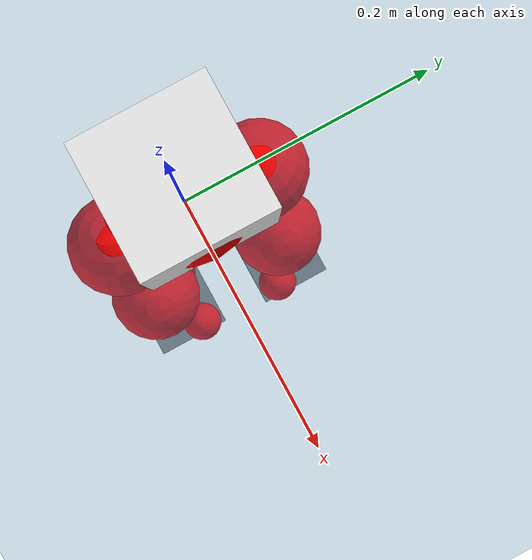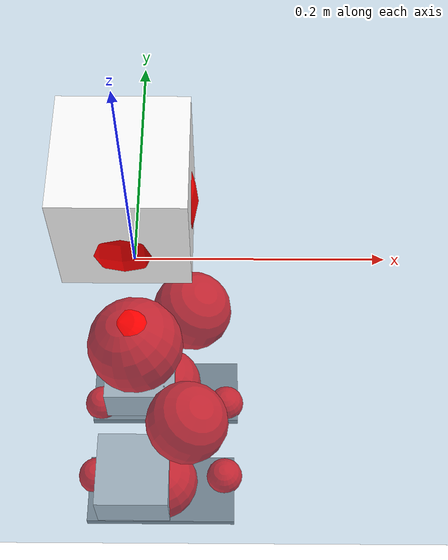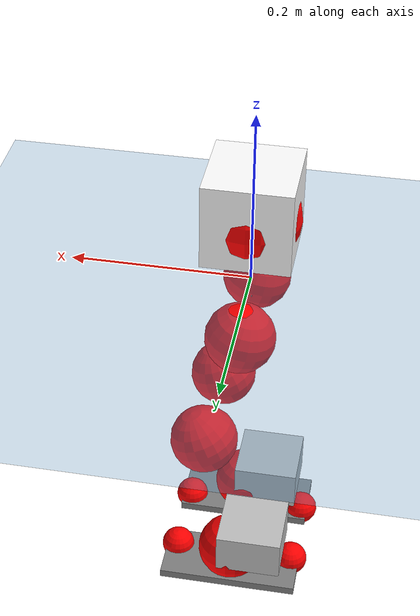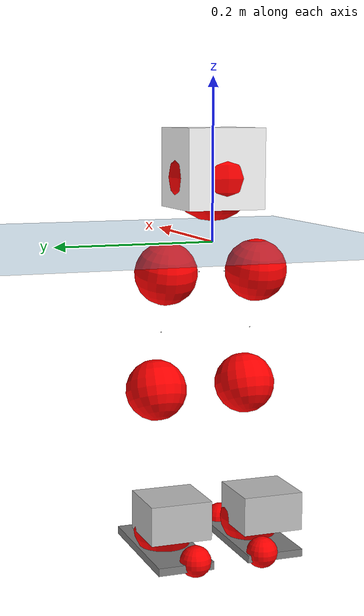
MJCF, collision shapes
<mujoco model="pi_12dof_release_v1">
  <compiler angle="radian" assetdir="assets" balanceinertia="true" inertiafromgeom="false"/>

  <option timestep="0.005" density="1.2" viscosity="2e-05"/>

  <size nkey="1"/>

  <visual>
    <quality shadowsize="8192"/>
    <map shadowclip="0.5"/>
  </visual>

  <default>
    <default class="/">
      <joint armature="0.01" damping="0.01" frictionloss="0.01"/>
      <geom contype="0" conaffinity="0" group="1" solref="-1000 -80"/>
      <site size="0.01 0.005 0.005" group="5"/>
      <general forcelimited="true" biastype="affine" gainprm="20" biasprm="0 -20 -0.5"/>
      <default class="foot">
        <geom size="0.0845 0.036 0.005" type="box" condim="6" group="4" priority="1" friction="0.9 0.2 0.2" solimp="0.015 1 0.005"/>
      </default>
      <default class="reward_collision_sphere">
        <geom group="5" rgba="1 0 0 1"/>
      </default>
    </default>
  </default>

  <asset>
    <texture type="skybox" colorspace="auto" name="//unnamed_texture_0" builtin="gradient" rgb1="0.95 0.95 0.95" rgb2="0.95 0.95 0.95" width="100" height="600"/>
    <texture type="2d" colorspace="auto" name="texplane" builtin="checker" rgb1="0.345 0.575 0.748" rgb2="0.345 0.575 0.748" markrgb="1 1 1" width="512" height="512"/>
    <material name="MatPlane" class="/" texture="texplane" texuniform="true" texrepeat="2 2" specular="0.9"/>
    <mesh name="baselink_1" class="/" file="baselink_1.STL"/>
    <mesh name="r_hip_pitch_link" class="/" file="r_hip_pitch_link.STL"/>
    <mesh name="r_hip_roll_link" class="/" file="r_hip_roll_link.STL"/>
    <mesh name="r_thigh_link" class="/" file="r_thigh_link.STL"/>
    <mesh name="r_calf_link" class="/" file="r_calf_link.STL"/>
    <mesh name="r_ankle_pitch_link" class="/" file="r_ankle_pitch_link.STL"/>
    <mesh name="r_ankle_roll_link" class="/" file="r_ankle_roll_link.STL"/>
    <mesh name="l_hip_pitch_link" class="/" file="l_hip_pitch_link.STL"/>
    <mesh name="l_hip_roll_link" class="/" file="l_hip_roll_link.STL"/>
    <mesh name="l_thigh_link" class="/" file="l_thigh_link.STL"/>
    <mesh name="l_calf_link" class="/" file="l_calf_link.STL"/>
    <mesh name="l_ankle_pitch_link" class="/" file="l_ankle_pitch_link.STL"/>
    <mesh name="l_ankle_roll_link" class="/" file="l_ankle_roll_link.STL"/>
  </asset>

  <worldbody>
    <geom name="floor" class="/" size="100 100 0.125" type="plane" group="0" material="MatPlane"/>
    <light name="toplight_shadow" class="/" pos="0 0 5" dir="0.0990148 0.0990148 -0.990148" type="directional" ambient="0.04 0.04 0.04" diffuse="0.55 0.55 0.55" specular="0.12 0.12 0.12"/>
    <light name="toplight_fill" class="/" pos="0 0 5" dir="0.0990148 0.0990148 -0.990148" type="directional" castshadow="false" ambient="0.04 0.04 0.04" diffuse="0.3 0.3 0.3" specular="0.08 0.08 0.08"/>
    <body name="trunk" pos="-6.27479e-05 0.00073114 0.000173393" quat="1 0.00033341 -0.000107011 7.3179e-05">
      <inertial pos="0.00331456 -0.00181461 0.0450213" quat="0.694701 0.012491 0.0131506 0.71907" mass="1.94417" diaginertia="0.0113971 0.00210239 0.00746725"/>
      <joint name="//unnamed_joint_0" type="free"/>
      <geom name="//unnamed_geom_1" class="/" type="mesh" density="0" rgba="1 1 1 1" mesh="baselink_1"/>
      <geom name="//unnamed_geom_2" class="/" size="0.0485486 0.0485486 0.0485486" pos="0 0 0.0901651" type="box" rgba="1 1 1 1"/>
      <geom name="//unnamed_geom_3" class="reward_collision_sphere" size="0.0534034" pos="0 0 0.0788944"/>
      <site name="imu" class="/" pos="-0.000767901 -0.00133056 -0.00134749" size="0.00970971"/>
      <camera name="track" class="/" pos="0 -1.49839 0" quat="0.707107 0.707107 0 0" mode="trackcom"/>
      <camera name="ego_camera" class="/" pos="0.0777491 0 0.202871" quat="-0.5 -0.5 0.5 0.5"/>
      <body name="r_hip_pitch_link" pos="0.000194694 -0.0165777 -0.036886" quat="0.9922 -9.77977e-06 -0.124657 -1.45422e-06">
        <inertial pos="0.000885348 -0.0424247 -4.43182e-05" quat="-0.0222205 0.700993 -0.030274 0.712179" mass="0.339792" diaginertia="0.000130997 2.3524e-05 0.000152493"/>
        <joint name="r_hip_pitch_joint" class="/" pos="0 0 0" axis="0.00624781 -0.999978 -0.00199929" range="-1.76465 1.23139" armature="0.0097843" damping="0.0169977" frictionloss="0.0100967"/>
        <geom name="//unnamed_geom_4" class="/" type="mesh" density="0" rgba="0.75294 0.75294 0.75294 1" mesh="r_hip_pitch_link"/>
        <geom name="//unnamed_geom_5" class="/" size="0.000485486 0.000485486 0.000485486" type="box" rgba="0.75294 0.75294 0.75294 1"/>
        <body name="r_hip_roll_link" pos="0.000257117 -0.0426018 -0.000608948" quat="1 0.000120018 0.000538158 -1.91182e-05">
          <inertial pos="-0.00072802 0.000982078 -0.0689085" quat="0.704401 -0.0814412 -0.0813521 0.700406" mass="0.352386" diaginertia="0.000399175 6.6721e-05 0.00023445"/>
          <joint name="r_hip_roll_joint" class="/" pos="0 0 0" axis="-0.999992 -0.00283532 0.00274195" range="-0.122498 0.496176" armature="0.0095744" damping="0.00778682" frictionloss="0.00964774"/>
          <geom name="//unnamed_geom_6" class="/" type="mesh" density="0" rgba="0.75294 0.75294 0.75294 1" mesh="r_hip_roll_link"/>
          <geom name="//unnamed_geom_7" class="/" size="0.000485486 0.000485486 0.000485486" type="box" rgba="0.75294 0.75294 0.75294 1"/>
          <geom name="//unnamed_geom_8" class="reward_collision_sphere" size="0.0388388"/>
          <body name="r_thigh_link" pos="-0.000179688 -0.0011687 -0.0776243" quat="1 0.000220274 6.87128e-05 0.000136165">
            <inertial pos="5.86264e-05 0.00120446 -0.0535134" quat="0.736967 0.675925 0.0022786 0.000168572" mass="0.103767" diaginertia="0.000151379 2.27836e-05 0.000106231"/>
            <joint name="r_thigh_joint" class="/" pos="0 0 0" axis="-0.000861793 0.000803265 -0.999999" range="-0.322914 0.571124" armature="0.00972143" damping="0" frictionloss="0.0101871"/>
            <geom name="//unnamed_geom_9" class="/" type="mesh" density="0" rgba="0.75294 0.75294 0.75294 1" mesh="r_thigh_link"/>
            <geom name="//unnamed_geom_10" class="/" size="0.000485486 0.000485486 0.000485486" type="box" rgba="0.75294 0.75294 0.75294 1"/>
            <body name="r_calf_link" pos="-0.00169147 -0.000809861 -0.0782917" quat="0.947698 -4.8292e-05 0.319168 -0.000116139">
              <inertial pos="-0.000903267 -0.00154961 -0.0781074" quat="0.999977 -0.00128779 0.000968034 0.00665345" mass="0.749863" diaginertia="0.00424421 0.000826491 0.000315631"/>
              <joint name="r_calf_joint" class="/" pos="0 0 0" axis="-0.00673316 -0.999959 -0.00603898" range="-1.63135 0.637369" armature="0.00975403" damping="0.0138893" frictionloss="0.0100181"/>
              <geom name="//unnamed_geom_11" class="/" type="mesh" density="0" rgba="0.75294 0.75294 0.75294 1" mesh="r_calf_link"/>
              <geom name="//unnamed_geom_12" class="/" size="0.000485486 0.000485486 0.000485486" type="box" rgba="0.75294 0.75294 0.75294 1"/>
              <geom name="//unnamed_geom_13" class="reward_collision_sphere" size="0.0388388"/>
              <body name="r_ankle_pitch_link" pos="0.0011899 0.000892968 -0.158795" quat="0.980054 -3.28393e-05 -0.19873 3.14774e-05">
                <inertial pos="0.00413231 0.00356512 0.000584276" quat="0.00284792 0.705591 -0.00186386 0.708611" mass="0.161174" diaginertia="0.000372207 5.23957e-05 0.000218093"/>
                <joint name="r_ankle_pitch_joint" class="/" pos="0 0 0" axis="-0.000585877 -1 6.94149e-05" stiffness="0.000367657" range="-1.28436 0.486141" armature="0.00976401" damping="0.0104165" frictionloss="0.00992663"/>
                <geom name="//unnamed_geom_14" class="/" type="mesh" density="0" rgba="0.75294 0.75294 0.75294 1" mesh="r_ankle_pitch_link"/>
                <geom name="//unnamed_geom_15" class="/" size="0.0378679 0.0388388 0.0242743" type="box" rgba="0.75294 0.75294 0.75294 1"/>
                <body name="r_ankle_roll_link" pos="0.0793191 0.00330735 0.000844562" quat="1 -0.000118934 6.10545e-05 -1.92311e-05">
                  <inertial pos="-0.0238809 -0.000721797 -0.0163513" quat="0.561207 0.431989 0.435126 0.555966" mass="0.482475" diaginertia="0.00138683 0.000245434 0.000529106"/>
                  <joint name="r_ankle_roll_joint" class="/" pos="0 0 0" axis="-0.999976 -0.00294157 -0.00628557" range="-0.124334 0.148803" armature="0.00971573" damping="0.00312776" frictionloss="0.00960963"/>
                  <geom name="//unnamed_geom_16" class="/" type="mesh" density="0" rgba="0.75294 0.75294 0.75294 1" mesh="r_ankle_roll_link"/>
                  <geom name="//unnamed_geom_17" class="/" type="mesh" rgba="0.75294 0.75294 0.75294 1" mesh="r_ankle_roll_link"/>
                  <geom name="right_foot" class="foot" size="0.0789198 0.036373 0.00472073" pos="-0.0528694 0 -0.0495908"/>
                  <geom name="//unnamed_geom_19" class="reward_collision_sphere" size="0.0388388" pos="-0.0518327 0 -0.0225413"/>
                  <geom name="//unnamed_geom_20" class="reward_collision_sphere" size="0.0194194" pos="0.0155498 0.0149839 -0.0450825"/>
                  <geom name="//unnamed_geom_21" class="reward_collision_sphere" size="0.0194194" pos="-0.124399 0.0149839 -0.0450825"/>
                  <site name="right_foot" class="foot" pos="-0.0528694 0 -0.0495908" size="0.00970971"/>
                </body>
              </body>
            </body>
          </body>
        </body>
      </body>
      <body name="l_hip_pitch_link" pos="0.000365069 0.0163735 -0.0365803" quat="0.992197 0.000177399 -0.124678 0.000160264">
        <inertial pos="0.00143677 0.0400774 -0.00111329" quat="-0.0389277 0.706122 0.0281456 0.706459" mass="0.353323" diaginertia="0.000153923 2.52911e-05 0.000182437"/>
        <joint name="l_hip_pitch_joint" class="/" pos="0 0 0" axis="-0.00117945 0.999999 0.000465554" range="-1.23877 1.75834" armature="0.00981262" damping="0.0118778" frictionloss="0.00960535"/>
        <geom name="//unnamed_geom_22" class="/" type="mesh" density="0" rgba="0.75294 0.75294 0.75294 1" mesh="l_hip_pitch_link"/>
        <geom name="//unnamed_geom_23" class="/" size="0.000485486 0.000485486 0.000485486" type="box" rgba="0.75294 0.75294 0.75294 1"/>
        <body name="l_hip_roll_link" pos="0.000368771 0.0431465 -0.000617399" quat="1 3.48089e-06 -0.00017648 0.000394881">
          <inertial pos="-0.000799938 0.0014036 -0.0689933" quat="0.699433 -0.0764696 -0.079035 0.706186" mass="0.350251" diaginertia="0.000403081 6.4666e-05 0.000234606"/>
          <joint name="l_hip_roll_joint" class="/" pos="0 0 0" axis="-0.999989 -0.000725163 -0.00461627" range="-0.497785 0.11267" armature="0.0102865" damping="0.00394107" frictionloss="0.010167"/>
          <geom name="//unnamed_geom_24" class="/" type="mesh" density="0" rgba="0.75294 0.75294 0.75294 1" mesh="l_hip_roll_link"/>
          <geom name="//unnamed_geom_25" class="/" size="0.000485486 0.000485486 0.000485486" type="box" rgba="0.75294 0.75294 0.75294 1"/>
          <geom name="//unnamed_geom_26" class="reward_collision_sphere" size="0.0388388"/>
          <body name="l_thigh_link" pos="0.000410764 -0.000775144 -0.0785407" quat="1 4.33215e-05 0.000224453 0.000374639">
            <inertial pos="0.000331009 -0.00154094 -0.0544156" quat="0.675974 0.736925 -7.67277e-05 -0.000589089" mass="0.104022" diaginertia="0.000151617 2.26205e-05 0.000106345"/>
            <joint name="l_thigh_joint" class="/" pos="0 0 0" axis="0.000438855 0.00036766 -1" range="-0.60492 0.301987" armature="0.0101917" damping="9.59595e-05" frictionloss="0.00956968"/>
            <geom name="//unnamed_geom_27" class="/" type="mesh" density="0" rgba="0.75294 0.75294 0.75294 1" mesh="l_thigh_link"/>
            <geom name="//unnamed_geom_28" class="/" size="0.000485486 0.000485486 0.000485486" type="box" rgba="0.75294 0.75294 0.75294 1"/>
            <body name="l_calf_link" pos="-0.00137962 0.000317328 -0.0794184" quat="0.947575 0.000357562 0.319533 0.000650903">
              <inertial pos="0.000520383 0.0027974 -0.078898" quat="0.999981 0.00267534 -0.000266461 0.00557847" mass="0.752555" diaginertia="0.00426066 0.000833926 0.000327266"/>
              <joint name="l_calf_joint" class="/" pos="0 0 0" axis="-0.000356384 0.999996 0.00296913" range="-0.646201 1.65848" armature="0.0101965" damping="0.00863487" frictionloss="0.00971206"/>
              <geom name="//unnamed_geom_29" class="/" type="mesh" density="0" rgba="0.75294 0.75294 0.75294 1" mesh="l_calf_link"/>
              <geom name="//unnamed_geom_30" class="/" size="0.000485486 0.000485486 0.000485486" type="box" rgba="0.75294 0.75294 0.75294 1"/>
              <geom name="//unnamed_geom_31" class="reward_collision_sphere" size="0.0388388"/>
              <body name="l_ankle_pitch_link" pos="0.00119906 0.000864031 -0.157133" quat="0.980081 -4.44246e-05 -0.198597 0.000308011">
                <inertial pos="0.00526042 -0.000337458 -0.000688487" quat="-0.00370266 0.708401 0.00288564 0.705795" mass="0.161499" diaginertia="0.000368768 5.26058e-05 0.000220907"/>
                <joint name="l_ankle_pitch_joint" class="/" pos="0 0 0" axis="3.84758e-05 1 0.000174276" stiffness="0.00180807" range="-0.518134 1.30499" armature="0.00948867" damping="0.00765817" frictionloss="0.0101267"/>
                <geom name="//unnamed_geom_32" class="/" type="mesh" density="0" rgba="0.75294 0.75294 0.75294 1" mesh="l_ankle_pitch_link"/>
                <geom name="//unnamed_geom_33" class="/" size="0.0378679 0.0388388 0.0242743" type="box" rgba="0.75294 0.75294 0.75294 1"/>
                <body name="l_ankle_roll_link" pos="0.0778289 0.000706991 -0.000794803" quat="1 -6.23407e-06 -1.04419e-05 1.15259e-05">
                  <inertial pos="-0.0242255 -0.000281787 -0.015827" quat="0.559868 0.430592 0.434351 0.558997" mass="0.470301" diaginertia="0.00135412 0.00024057 0.000514272"/>
                  <joint name="l_ankle_roll_joint" class="/" pos="0 0 0" axis="-0.999999 -0.000264837 -0.00127206" range="-0.131422 0.156295" armature="0.00945829" damping="0.00123186" frictionloss="0.00995767"/>
                  <geom name="//unnamed_geom_34" class="/" type="mesh" density="0" rgba="0.75294 0.75294 0.75294 1" mesh="l_ankle_roll_link"/>
                  <geom name="//unnamed_geom_35" class="/" type="mesh" rgba="0.75294 0.75294 0.75294 1" mesh="l_ankle_roll_link"/>
                  <geom name="left_foot" class="foot" size="0.0813061 0.0356068 0.00494162" pos="-0.0528694 0 -0.0495908"/>
                  <geom name="//unnamed_geom_37" class="reward_collision_sphere" size="0.0388388" pos="-0.0518327 0 -0.0225413"/>
                  <geom name="//unnamed_geom_38" class="reward_collision_sphere" size="0.0194194" pos="0.0155498 -0.0149839 -0.0450825"/>
                  <geom name="//unnamed_geom_39" class="reward_collision_sphere" size="0.0194194" pos="-0.124399 -0.0149839 -0.0450825"/>
                  <site name="left_foot" class="foot" pos="-0.0528694 0 -0.0495908" size="0.00970971"/>
                </body>
              </body>
            </body>
          </body>
        </body>
      </body>
    </body>
  </worldbody>

  <contact>
    <pair class="/" geom1="floor" geom2="right_foot" name="//unnamed_contact_1"/>
    <pair class="/" geom1="floor" geom2="left_foot" name="//unnamed_contact_0"/>
  </contact>

  <actuator>
    <general name="r_hip_pitch_joint" class="/" joint="r_hip_pitch_joint" forcerange="-20.9545 20.9545" gainprm="19.9032" biasprm="0 -19.9032 -0.467731"/>
    <general name="r_hip_roll_joint" class="/" joint="r_hip_roll_joint" forcerange="-21.3938 21.3938" gainprm="19.9032" biasprm="0 -19.9032 -0.467731"/>
    <general name="r_thigh_joint" class="/" joint="r_thigh_joint" forcerange="-20.3429 20.3429" gainprm="19.9032" biasprm="0 -19.9032 -0.467731"/>
    <general name="r_calf_joint" class="/" joint="r_calf_joint" forcerange="-20.2352 20.2352" gainprm="19.9032" biasprm="0 -19.9032 -0.467731"/>
    <general name="r_ankle_pitch_joint" class="/" joint="r_ankle_pitch_joint" forcerange="-20.4127 20.4127" gainprm="19.9032" biasprm="0 -19.9032 -0.467731"/>
    <general name="r_ankle_roll_joint" class="/" joint="r_ankle_roll_joint" forcerange="-20.1041 20.1041" gainprm="19.9032" biasprm="0 -19.9032 -0.467731"/>
    <general name="l_hip_pitch_joint" class="/" joint="l_hip_pitch_joint" forcerange="-19.6967 19.6967" gainprm="19.9032" biasprm="0 -19.9032 -0.467731"/>
    <general name="l_hip_roll_joint" class="/" joint="l_hip_roll_joint" forcerange="-20.3857 20.3857" gainprm="19.9032" biasprm="0 -19.9032 -0.467731"/>
    <general name="l_thigh_joint" class="/" joint="l_thigh_joint" forcerange="-20.1523 20.1523" gainprm="19.9032" biasprm="0 -19.9032 -0.467731"/>
    <general name="l_calf_joint" class="/" joint="l_calf_joint" forcerange="-21.0969 21.0969" gainprm="19.9032" biasprm="0 -19.9032 -0.467731"/>
    <general name="l_ankle_pitch_joint" class="/" joint="l_ankle_pitch_joint" forcerange="-20.6165 20.6165" gainprm="19.9032" biasprm="0 -19.9032 -0.467731"/>
    <general name="l_ankle_roll_joint" class="/" joint="l_ankle_roll_joint" forcerange="-20.733 20.733" gainprm="19.9032" biasprm="0 -19.9032 -0.467731"/>
  </actuator>

  <sensor>
    <gyro site="imu" name="imu_angular_velocity"/>
    <velocimeter site="imu" name="imu_linear_velocity"/>
    <framelinvel objtype="site" objname="left_foot" name="left_foot_global_linear_velocity"/>
    <framelinvel objtype="site" objname="right_foot" name="right_foot_global_linear_velocity"/>
  </sensor>

  <keyframe>
    <key name="home" qpos="0 0 0.291 1 0 0 0 0.4 0 0 -0.8 0.4 0 -0.4 0 0 0.8 -0.4 0"/>
  </keyframe>
</mujoco>
